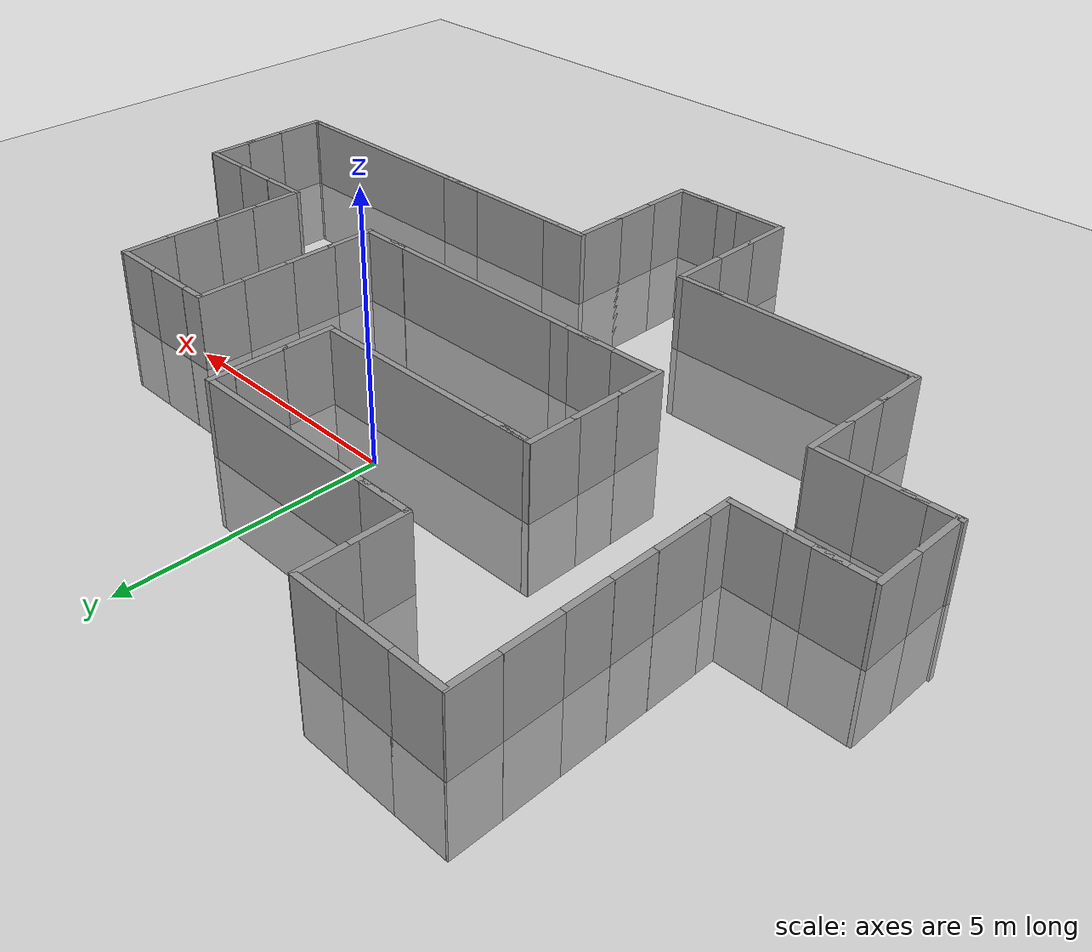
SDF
<sdf version="1.4">
 <world name="default">
  <physics type="ode">
   <gravity>0 0 -9.81</gravity>
   <ode>
    <solver><type>quick</type><iters>20</iters><sor>1</sor></solver>
    <constraints>
     <cfm>0</cfm>
     <erp>0.2</erp>
     <contact_max_correcting_vel>100</contact_max_correcting_vel>
     <contact_surface_layer>0</contact_surface_layer>
    </constraints>
   </ode>
   <real_time_update_rate>1000</real_time_update_rate>
   <max_step_size>0.001</max_step_size>
   <real_time_factor>1</real_time_factor>
  </physics>
  <light name="sun" type="directional">
   <pose>0 0 10 0 -0 0</pose>
   <diffuse>0.8 0.8 0.8 1</diffuse>
   <specular>0.2 0.2 0.2 1</specular>
   <attenuation>
    <range>1000</range>
    <constant>0.9</constant>
    <linear>0.01</linear>
    <quadratic>0.001</quadratic>
   </attenuation>
   <direction>-0.5 0.1 -0.9</direction>
  </light>
  <model name="ground_plane">
   <static>1</static>
   <link name="link">
    <collision name="collision">
     <geometry><plane><normal>0 0 1</normal><size>100 100</size></plane></geometry>
     <surface><friction><ode><mu>100</mu><mu2>50</mu2></ode></friction></surface>
    </collision>
    <visual name="visual">
     <cast_shadows>0</cast_shadows>
     <geometry><plane><normal>0 0 1</normal><size>100 100</size></plane></geometry>
     <material>
      <script><uri>file://media/materials/scripts/gazebo.material</uri><name>Gazebo/Grey</name></script>
     </material>
    </visual>
    <velocity_decay><linear>0</linear><angular>0</angular></velocity_decay>
   </link>
  </model>
  <scene><ambient>0.4 0.4 0.4 1</ambient><background>0.7 0.7 0.7 1</background><shadows>1</shadows></scene>
  <spherical_coordinates>
   <surface_model>EARTH_WGS84</surface_model>
   <latitude_deg>0</latitude_deg>
   <longitude_deg>0</longitude_deg>
   <elevation>0</elevation>
   <heading_deg>0</heading_deg>
  </spherical_coordinates>
  <model name="road_3">
   <static>1</static>
   <link name="Wall_0">
    <collision name="Wall_0_Collision">
     <geometry><box><size>4.76 0.12 3</size></box></geometry>
     <pose>2.58 -0.26 0 0 -0 0</pose>
    </collision>
    <visual name="Wall_0_Visual">
     <geometry><box><size>4.76 0.12 3</size></box></geometry>
     <material>
      <script><uri>file://media/materials/scripts/gazebo.material</uri><name>Gazebo/Grey</name></script>
     </material>
     <pose>2.58 -0.26 0 0 -0 0</pose>
    </visual>
    <velocity_decay><linear>0</linear><angular>0</angular></velocity_decay>
   </link>
   <pose>5 -6.40557 0 0 -0 0</pose>
  </model>
  <model name="wall_vertical_2">
   <static>1</static>
   <link name="Wall_37">
    <collision name="Wall_37_Collision">
     <geometry><box><size>1.04 0.12 3</size></box></geometry>
     <pose>2.58 -0.26 0 0 -0 0</pose>
    </collision>
    <visual name="Wall_37_Visual">
     <geometry><box><size>1.04 0.12 3</size></box></geometry>
     <material>
      <script><uri>file://media/materials/scripts/gazebo.material</uri><name>Gazebo/Grey</name></script>
     </material>
     <pose>2.58 -0.26 0 0 -0 0</pose>
    </visual>
    <velocity_decay><linear>0</linear><angular>0</angular></velocity_decay>
   </link>
   <pose>7 -3.56839 0 0 -0 0</pose>
  </model>
  <model name="wall_vertical_3">
   <static>1</static>
   <link name="Wall_37">
    <collision name="Wall_37_Collision">
     <geometry><box><size>1.04 0.12 3</size></box></geometry>
     <pose>2.58 -0.26 0 0 -0 0</pose>
    </collision>
    <visual name="Wall_37_Visual">
     <geometry><box><size>1.04 0.12 3</size></box></geometry>
     <material>
      <script><uri>file://media/materials/scripts/gazebo.material</uri><name>Gazebo/Grey</name></script>
     </material>
     <pose>2.58 -0.26 0 0 -0 0</pose>
    </visual>
    <velocity_decay><linear>0</linear><angular>0</angular></velocity_decay>
   </link>
   <pose>6 -3.56858 0 0 -0 0</pose>
  </model>
  <model name="wall_vertical_4">
   <static>1</static>
   <link name="Wall_37">
    <collision name="Wall_37_Collision">
     <geometry><box><size>1.04 0.12 3</size></box></geometry>
     <pose>2.58 -0.26 0 0 -0 0</pose>
    </collision>
    <visual name="Wall_37_Visual">
     <geometry><box><size>1.04 0.12 3</size></box></geometry>
     <material>
      <script><uri>file://media/materials/scripts/gazebo.material</uri><name>Gazebo/Grey</name></script>
     </material>
     <pose>2.58 -0.26 0 0 -0 0</pose>
    </visual>
    <velocity_decay><linear>0</linear><angular>0</angular></velocity_decay>
   </link>
   <pose>5 -3.57759 0 0 -0 0</pose>
  </model>
  <model name="wall_horizontal_8">
   <static>1</static>
   <link name="Wall_4">
    <collision name="Wall_4_Collision">
     <geometry><box><size>0.12 1.12 3</size></box></geometry>
     <pose>2.58 -0.26 0 0 -0 0</pose>
    </collision>
    <visual name="Wall_4_Visual">
     <geometry><box><size>0.12 1.12 3</size></box></geometry>
     <material>
      <script><uri>file://media/materials/scripts/gazebo.material</uri><name>Gazebo/Grey</name></script>
     </material>
     <pose>2.58 -0.26 0 0 -0 0</pose>
    </visual>
    <velocity_decay><linear>0</linear><angular>0</angular></velocity_decay>
   </link>
   <pose>4.53991 -3 0 0 -0 0</pose>
  </model>
  <model name="wall_horizontal_10">
   <static>1</static>
   <link name="Wall_4">
    <collision name="Wall_4_Collision">
     <geometry><box><size>0.12 1.12 3</size></box></geometry>
     <pose>2.58 -0.26 0 0 -0 0</pose>
    </collision>
    <visual name="Wall_4_Visual">
     <geometry><box><size>0.12 1.12 3</size></box></geometry>
     <material>
      <script><uri>file://media/materials/scripts/gazebo.material</uri><name>Gazebo/Grey</name></script>
     </material>
     <pose>2.58 -0.26 0 0 -0 0</pose>
    </visual>
    <velocity_decay><linear>0</linear><angular>0</angular></velocity_decay>
   </link>
   <pose>4.54095 -2 0 0 -0 0</pose>
  </model>
  <model name="wall_horizontal_11">
   <static>1</static>
   <link name="Wall_4">
    <collision name="Wall_4_Collision">
     <geometry><box><size>0.12 1.12 3</size></box></geometry>
     <pose>2.58 -0.26 0 0 -0 0</pose>
    </collision>
    <visual name="Wall_4_Visual">
     <geometry><box><size>0.12 1.12 3</size></box></geometry>
     <material>
      <script><uri>file://media/materials/scripts/gazebo.material</uri><name>Gazebo/Grey</name></script>
     </material>
     <pose>2.58 -0.26 0 0 -0 0</pose>
    </visual>
    <velocity_decay><linear>0</linear><angular>0</angular></velocity_decay>
   </link>
   <pose>4.53858 -1 0 0 -0 0</pose>
  </model>
  <model name="wall_horizontal_14">
   <static>1</static>
   <link name="Wall_4">
    <collision name="Wall_4_Collision">
     <geometry><box><size>0.12 1.12 3</size></box></geometry>
     <pose>2.58 -0.26 0 0 -0 0</pose>
    </collision>
    <visual name="Wall_4_Visual">
     <geometry><box><size>0.12 1.12 3</size></box></geometry>
     <material>
      <script><uri>file://media/materials/scripts/gazebo.material</uri><name>Gazebo/Grey</name></script>
     </material>
     <pose>2.58 -0.26 0 0 -0 0</pose>
    </visual>
    <velocity_decay><linear>0</linear><angular>0</angular></velocity_decay>
   </link>
   <pose>2 -3 0 0 -0 0</pose>
  </model>
  <model name="wall_horizontal_15">
   <static>1</static>
   <link name="Wall_4">
    <collision name="Wall_4_Collision">
     <geometry><box><size>0.12 1.12 3</size></box></geometry>
     <pose>2.58 -0.26 0 0 -0 0</pose>
    </collision>
    <visual name="Wall_4_Visual">
     <geometry><box><size>0.12 1.12 3</size></box></geometry>
     <material>
      <script><uri>file://media/materials/scripts/gazebo.material</uri><name>Gazebo/Grey</name></script>
     </material>
     <pose>2.58 -0.26 0 0 -0 0</pose>
    </visual>
    <velocity_decay><linear>0</linear><angular>0</angular></velocity_decay>
   </link>
   <pose>2 -2 0 0 -0 0</pose>
  </model>
  <model name="wall_horizontal_16">
   <static>1</static>
   <link name="Wall_4">
    <collision name="Wall_4_Collision">
     <geometry><box><size>0.12 1.12 3</size></box></geometry>
     <pose>2.58 -0.26 0 0 -0 0</pose>
    </collision>
    <visual name="Wall_4_Visual">
     <geometry><box><size>0.12 1.12 3</size></box></geometry>
     <material>
      <script><uri>file://media/materials/scripts/gazebo.material</uri><name>Gazebo/Grey</name></script>
     </material>
     <pose>2.58 -0.26 0 0 -0 0</pose>
    </visual>
    <velocity_decay><linear>0</linear><angular>0</angular></velocity_decay>
   </link>
   <pose>2 -1 0 0 -0 0</pose>
  </model>
  <model name="wall_horizontal_17">
   <static>1</static>
   <link name="Wall_4">
    <collision name="Wall_4_Collision">
     <geometry><box><size>0.12 1.12 3</size></box></geometry>
     <pose>2.58 -0.26 0 0 -0 0</pose>
    </collision>
    <visual name="Wall_4_Visual">
     <geometry><box><size>0.12 1.12 3</size></box></geometry>
     <material>
      <script><uri>file://media/materials/scripts/gazebo.material</uri><name>Gazebo/Grey</name></script>
     </material>
     <pose>2.58 -0.26 0 0 -0 0</pose>
    </visual>
    <velocity_decay><linear>0</linear><angular>0</angular></velocity_decay>
   </link>
   <pose>2 0 0 0 -0 0</pose>
  </model>
  <model name="wall_horizontal_18">
   <static>1</static>
   <link name="Wall_4">
    <collision name="Wall_4_Collision">
     <geometry><box><size>0.12 1.12 3</size></box></geometry>
     <pose>2.58 -0.26 0 0 -0 0</pose>
    </collision>
    <visual name="Wall_4_Visual">
     <geometry><box><size>0.12 1.12 3</size></box></geometry>
     <material>
      <script><uri>file://media/materials/scripts/gazebo.material</uri><name>Gazebo/Grey</name></script>
     </material>
     <pose>2.58 -0.26 0 0 -0 0</pose>
    </visual>
    <velocity_decay><linear>0</linear><angular>0</angular></velocity_decay>
   </link>
   <pose>4.53794 0 0 0 -0 0</pose>
  </model>
  <model name="wall_vertical_6">
   <static>1</static>
   <link name="Wall_37">
    <collision name="Wall_37_Collision">
     <geometry><box><size>1.04 0.12 3</size></box></geometry>
     <pose>2.58 -0.26 0 0 -0 0</pose>
    </collision>
    <visual name="Wall_37_Visual">
     <geometry><box><size>1.04 0.12 3</size></box></geometry>
     <material>
      <script><uri>file://media/materials/scripts/gazebo.material</uri><name>Gazebo/Grey</name></script>
     </material>
     <pose>2.58 -0.26 0 0 -0 0</pose>
    </visual>
    <velocity_decay><linear>0</linear><angular>0</angular></velocity_decay>
   </link>
   <pose>2.45897 -6.40117 0 0 -0 0</pose>
  </model>
  <model name="road_4">
   <static>1</static>
   <link name="Wall_0">
    <collision name="Wall_0_Collision">
     <geometry><box><size>4.76 0.12 3</size></box></geometry>
     <pose>2.58 -0.26 0 0 -0 0</pose>
    </collision>
    <visual name="Wall_0_Visual">
     <geometry><box><size>4.76 0.12 3</size></box></geometry>
     <material>
      <script><uri>file://media/materials/scripts/gazebo.material</uri><name>Gazebo/Grey</name></script>
     </material>
     <pose>2.58 -0.26 0 0 -0 0</pose>
    </visual>
    <velocity_decay><linear>0</linear><angular>0</angular></velocity_decay>
   </link>
   <pose>2 -6.40598 0 0 -0 0</pose>
  </model>
  <model name="wall_horizontal_19">
   <static>1</static>
   <link name="Wall_4">
    <collision name="Wall_4_Collision">
     <geometry><box><size>0.12 1.12 3</size></box></geometry>
     <pose>2.58 -0.26 0 0 -0 0</pose>
    </collision>
    <visual name="Wall_4_Visual">
     <geometry><box><size>0.12 1.12 3</size></box></geometry>
     <material>
      <script><uri>file://media/materials/scripts/gazebo.material</uri><name>Gazebo/Grey</name></script>
     </material>
     <pose>2.58 -0.26 0 0 -0 0</pose>
    </visual>
    <velocity_decay><linear>0</linear><angular>0</angular></velocity_decay>
   </link>
   <pose>-1 -7 0 0 -0 0</pose>
  </model>
  <model name="wall_vertical_11">
   <static>1</static>
   <link name="Wall_37">
    <collision name="Wall_37_Collision">
     <geometry><box><size>1.04 0.12 3</size></box></geometry>
     <pose>2.58 -0.26 0 0 -0 0</pose>
    </collision>
    <visual name="Wall_37_Visual">
     <geometry><box><size>1.04 0.12 3</size></box></geometry>
     <material>
      <script><uri>file://media/materials/scripts/gazebo.material</uri><name>Gazebo/Grey</name></script>
     </material>
     <pose>2.58 -0.26 0 0 -0 0</pose>
    </visual>
    <velocity_decay><linear>0</linear><angular>0</angular></velocity_decay>
   </link>
   <pose>-0.544386 -6.40292 0 0 -0 0</pose>
  </model>
  <model name="road_5">
   <static>1</static>
   <link name="Wall_0">
    <collision name="Wall_0_Collision">
     <geometry><box><size>4.76 0.12 3</size></box></geometry>
     <pose>2.58 -0.26 0 0 -0 0</pose>
    </collision>
    <visual name="Wall_0_Visual">
     <geometry><box><size>4.76 0.12 3</size></box></geometry>
     <material>
      <script><uri>file://media/materials/scripts/gazebo.material</uri><name>Gazebo/Grey</name></script>
     </material>
     <pose>2.58 -0.26 0 0 -0 0</pose>
    </visual>
    <velocity_decay><linear>0</linear><angular>0</angular></velocity_decay>
   </link>
   <pose>-1 -3.49648 0 0 -0 0</pose>
  </model>
  <model name="wall_vertical_13">
   <static>1</static>
   <link name="Wall_37">
    <collision name="Wall_37_Collision">
     <geometry><box><size>1.04 0.12 3</size></box></geometry>
     <pose>2.58 -0.26 0 0 -0 0</pose>
    </collision>
    <visual name="Wall_37_Visual">
     <geometry><box><size>1.04 0.12 3</size></box></geometry>
     <material>
      <script><uri>file://media/materials/scripts/gazebo.material</uri><name>Gazebo/Grey</name></script>
     </material>
     <pose>2.58 -0.26 0 0 -0 0</pose>
    </visual>
    <velocity_decay><linear>0</linear><angular>0</angular></velocity_decay>
   </link>
   <pose>1.46262 -3.4849 0 0 -0 0</pose>
  </model>
  <model name="road_7">
   <static>1</static>
   <link name="Wall_0">
    <collision name="Wall_0_Collision">
     <geometry><box><size>4.76 0.12 3</size></box></geometry>
     <pose>2.58 -0.26 0 0 -0 0</pose>
    </collision>
    <visual name="Wall_0_Visual">
     <geometry><box><size>4.76 0.12 3</size></box></geometry>
     <material>
      <script><uri>file://media/materials/scripts/gazebo.material</uri><name>Gazebo/Grey</name></script>
     </material>
     <pose>2.58 -0.26 0 0 -0 0</pose>
    </visual>
    <velocity_decay><linear>0</linear><angular>0</angular></velocity_decay>
   </link>
   <pose>-6 -6.42547 0 0 -0 0</pose>
  </model>
  <model name="wall_vertical_14">
   <static>1</static>
   <link name="Wall_37">
    <collision name="Wall_37_Collision">
     <geometry><box><size>1.04 0.12 3</size></box></geometry>
     <pose>2.58 -0.26 0 0 -0 0</pose>
    </collision>
    <visual name="Wall_37_Visual">
     <geometry><box><size>1.04 0.12 3</size></box></geometry>
     <material>
      <script><uri>file://media/materials/scripts/gazebo.material</uri><name>Gazebo/Grey</name></script>
     </material>
     <pose>2.58 -0.26 0 0 -0 0</pose>
    </visual>
    <velocity_decay><linear>0</linear><angular>0</angular></velocity_decay>
   </link>
   <pose>-4 -6.42833 0 0 -0 0</pose>
  </model>
  <model name="wall_horizontal_21">
   <static>1</static>
   <link name="Wall_4">
    <collision name="Wall_4_Collision">
     <geometry><box><size>0.12 1.12 3</size></box></geometry>
     <pose>2.58 -0.26 0 0 -0 0</pose>
    </collision>
    <visual name="Wall_4_Visual">
     <geometry><box><size>0.12 1.12 3</size></box></geometry>
     <material>
      <script><uri>file://media/materials/scripts/gazebo.material</uri><name>Gazebo/Grey</name></script>
     </material>
     <pose>2.58 -0.26 0 0 -0 0</pose>
    </visual>
    <velocity_decay><linear>0</linear><angular>0</angular></velocity_decay>
   </link>
   <pose>-3.52944 -7 0 0 -0 0</pose>
  </model>
  <model name="wall_vertical_15">
   <static>1</static>
   <link name="Wall_37">
    <collision name="Wall_37_Collision">
     <geometry><box><size>1.04 0.12 3</size></box></geometry>
     <pose>2.58 -0.26 0 0 -0 0</pose>
    </collision>
    <visual name="Wall_37_Visual">
     <geometry><box><size>1.04 0.12 3</size></box></geometry>
     <material>
      <script><uri>file://media/materials/scripts/gazebo.material</uri><name>Gazebo/Grey</name></script>
     </material>
     <pose>2.58 -0.26 0 0 -0 0</pose>
    </visual>
    <velocity_decay><linear>0</linear><angular>0</angular></velocity_decay>
   </link>
   <pose>-3.56569 -3.4925 0 0 -0 0</pose>
  </model>
  <model name="wall_vertical_17">
   <static>1</static>
   <link name="Wall_37">
    <collision name="Wall_37_Collision">
     <geometry><box><size>1.04 0.12 3</size></box></geometry>
     <pose>2.58 -0.26 0 0 -0 0</pose>
    </collision>
    <visual name="Wall_37_Visual">
     <geometry><box><size>1.04 0.12 3</size></box></geometry>
     <material>
      <script><uri>file://media/materials/scripts/gazebo.material</uri><name>Gazebo/Grey</name></script>
     </material>
     <pose>2.58 -0.26 0 0 -0 0</pose>
    </visual>
    <velocity_decay><linear>0</linear><angular>0</angular></velocity_decay>
   </link>
   <pose>-4 -3.49091 0 0 -0 0</pose>
  </model>
  <model name="wall_vertical_19">
   <static>1</static>
   <link name="Wall_37">
    <collision name="Wall_37_Collision">
     <geometry><box><size>1.04 0.12 3</size></box></geometry>
     <pose>2.58 -0.26 0 0 -0 0</pose>
    </collision>
    <visual name="Wall_37_Visual">
     <geometry><box><size>1.04 0.12 3</size></box></geometry>
     <material>
      <script><uri>file://media/materials/scripts/gazebo.material</uri><name>Gazebo/Grey</name></script>
     </material>
     <pose>2.58 -0.26 0 0 -0 0</pose>
    </visual>
    <velocity_decay><linear>0</linear><angular>0</angular></velocity_decay>
   </link>
   <pose>-5 -3.48647 0 0 -0 0</pose>
  </model>
  <model name="wall_horizontal_24">
   <static>1</static>
   <link name="Wall_4">
    <collision name="Wall_4_Collision">
     <geometry><box><size>0.12 1.12 3</size></box></geometry>
     <pose>2.58 -0.26 0 0 -0 0</pose>
    </collision>
    <visual name="Wall_4_Visual">
     <geometry><box><size>0.12 1.12 3</size></box></geometry>
     <material>
      <script><uri>file://media/materials/scripts/gazebo.material</uri><name>Gazebo/Grey</name></script>
     </material>
     <pose>2.58 -0.26 0 0 -0 0</pose>
    </visual>
    <velocity_decay><linear>0</linear><angular>0</angular></velocity_decay>
   </link>
   <pose>-5.47354 -3 0 0 -0 0</pose>
  </model>
  <model name="wall_horizontal_26">
   <static>1</static>
   <link name="Wall_4">
    <collision name="Wall_4_Collision">
     <geometry><box><size>0.12 1.12 3</size></box></geometry>
     <pose>2.58 -0.26 0 0 -0 0</pose>
    </collision>
    <visual name="Wall_4_Visual">
     <geometry><box><size>0.12 1.12 3</size></box></geometry>
     <material>
      <script><uri>file://media/materials/scripts/gazebo.material</uri><name>Gazebo/Grey</name></script>
     </material>
     <pose>2.58 -0.26 0 0 -0 0</pose>
    </visual>
    <velocity_decay><linear>0</linear><angular>0</angular></velocity_decay>
   </link>
   <pose>-5.47149 -2 0 0 -0 0</pose>
  </model>
  <model name="wall_horizontal_27">
   <static>1</static>
   <link name="Wall_4">
    <collision name="Wall_4_Collision">
     <geometry><box><size>0.12 1.12 3</size></box></geometry>
     <pose>2.58 -0.26 0 0 -0 0</pose>
    </collision>
    <visual name="Wall_4_Visual">
     <geometry><box><size>0.12 1.12 3</size></box></geometry>
     <material>
      <script><uri>file://media/materials/scripts/gazebo.material</uri><name>Gazebo/Grey</name></script>
     </material>
     <pose>2.58 -0.26 0 0 -0 0</pose>
    </visual>
    <velocity_decay><linear>0</linear><angular>0</angular></velocity_decay>
   </link>
   <pose>-5.47191 -1 0 0 -0 0</pose>
  </model>
  <model name="wall_horizontal_28">
   <static>1</static>
   <link name="Wall_4">
    <collision name="Wall_4_Collision">
     <geometry><box><size>0.12 1.12 3</size></box></geometry>
     <pose>2.58 -0.26 0 0 -0 0</pose>
    </collision>
    <visual name="Wall_4_Visual">
     <geometry><box><size>0.12 1.12 3</size></box></geometry>
     <material>
      <script><uri>file://media/materials/scripts/gazebo.material</uri><name>Gazebo/Grey</name></script>
     </material>
     <pose>2.58 -0.26 0 0 -0 0</pose>
    </visual>
    <velocity_decay><linear>0</linear><angular>0</angular></velocity_decay>
   </link>
   <pose>-5.50793 2.51414 0 0 -0 0</pose>
  </model>
  <model name="wall_horizontal_34">
   <static>1</static>
   <link name="Wall_4">
    <collision name="Wall_4_Collision">
     <geometry><box><size>0.12 1.12 3</size></box></geometry>
     <pose>2.58 -0.26 0 0 -0 0</pose>
    </collision>
    <visual name="Wall_4_Visual">
     <geometry><box><size>0.12 1.12 3</size></box></geometry>
     <material>
      <script><uri>file://media/materials/scripts/gazebo.material</uri><name>Gazebo/Grey</name></script>
     </material>
     <pose>2.58 -0.26 0 0 -0 0</pose>
    </visual>
    <velocity_decay><linear>0</linear><angular>0</angular></velocity_decay>
   </link>
   <pose>-8.50702 -0.438329 0 0 -0 0</pose>
  </model>
  <model name="wall_horizontal_36">
   <static>1</static>
   <link name="Wall_4">
    <collision name="Wall_4_Collision">
     <geometry><box><size>0.12 1.12 3</size></box></geometry>
     <pose>2.58 -0.26 0 0 -0 0</pose>
    </collision>
    <visual name="Wall_4_Visual">
     <geometry><box><size>0.12 1.12 3</size></box></geometry>
     <material>
      <script><uri>file://media/materials/scripts/gazebo.material</uri><name>Gazebo/Grey</name></script>
     </material>
     <pose>2.58 -0.26 0 0 -0 0</pose>
    </visual>
    <velocity_decay><linear>0</linear><angular>0</angular></velocity_decay>
   </link>
   <pose>-8.50457 0.454309 0 0 -0 0</pose>
  </model>
  <model name="wall_horizontal_37">
   <static>1</static>
   <link name="Wall_4">
    <collision name="Wall_4_Collision">
     <geometry><box><size>0.12 1.12 3</size></box></geometry>
     <pose>2.58 -0.26 0 0 -0 0</pose>
    </collision>
    <visual name="Wall_4_Visual">
     <geometry><box><size>0.12 1.12 3</size></box></geometry>
     <material>
      <script><uri>file://media/materials/scripts/gazebo.material</uri><name>Gazebo/Grey</name></script>
     </material>
     <pose>2.58 -0.26 0 0 -0 0</pose>
    </visual>
    <velocity_decay><linear>0</linear><angular>0</angular></velocity_decay>
   </link>
   <pose>-8.50217 1.56712 0 0 -0 0</pose>
  </model>
  <model name="wall_horizontal_38">
   <static>1</static>
   <link name="Wall_4">
    <collision name="Wall_4_Collision">
     <geometry><box><size>0.12 1.12 3</size></box></geometry>
     <pose>2.58 -0.26 0 0 -0 0</pose>
    </collision>
    <visual name="Wall_4_Visual">
     <geometry><box><size>0.12 1.12 3</size></box></geometry>
     <material>
      <script><uri>file://media/materials/scripts/gazebo.material</uri><name>Gazebo/Grey</name></script>
     </material>
     <pose>2.58 -0.26 0 0 -0 0</pose>
    </visual>
    <velocity_decay><linear>0</linear><angular>0</angular></velocity_decay>
   </link>
   <pose>-8.50221 2.50783 0 0 -0 0</pose>
  </model>
  <model name="wall_horizontal_39">
   <static>1</static>
   <link name="Wall_4">
    <collision name="Wall_4_Collision">
     <geometry><box><size>0.12 1.12 3</size></box></geometry>
     <pose>2.58 -0.26 0 0 -0 0</pose>
    </collision>
    <visual name="Wall_4_Visual">
     <geometry><box><size>0.12 1.12 3</size></box></geometry>
     <material>
      <script><uri>file://media/materials/scripts/gazebo.material</uri><name>Gazebo/Grey</name></script>
     </material>
     <pose>2.58 -0.26 0 0 -0 0</pose>
    </visual>
    <velocity_decay><linear>0</linear><angular>0</angular></velocity_decay>
   </link>
   <pose>-8.50009 3.49648 0 0 -0 0</pose>
  </model>
  <model name="wall_horizontal_42">
   <static>1</static>
   <link name="Wall_4">
    <collision name="Wall_4_Collision">
     <geometry><box><size>0.12 1.12 3</size></box></geometry>
     <pose>2.58 -0.26 0 0 -0 0</pose>
    </collision>
    <visual name="Wall_4_Visual">
     <geometry><box><size>0.12 1.12 3</size></box></geometry>
     <material>
      <script><uri>file://media/materials/scripts/gazebo.material</uri><name>Gazebo/Grey</name></script>
     </material>
     <pose>2.58 -0.26 0 0 -0 0</pose>
    </visual>
    <velocity_decay><linear>0</linear><angular>0</angular></velocity_decay>
   </link>
   <pose>-8.50291 -1 0 0 -0 0</pose>
  </model>
  <model name="wall_horizontal_45">
   <static>1</static>
   <link name="Wall_4">
    <collision name="Wall_4_Collision">
     <geometry><box><size>0.12 1.12 3</size></box></geometry>
     <pose>2.58 -0.26 0 0 -0 0</pose>
    </collision>
    <visual name="Wall_4_Visual">
     <geometry><box><size>0.12 1.12 3</size></box></geometry>
     <material>
      <script><uri>file://media/materials/scripts/gazebo.material</uri><name>Gazebo/Grey</name></script>
     </material>
     <pose>2.58 -0.26 0 0 -0 0</pose>
    </visual>
    <velocity_decay><linear>0</linear><angular>0</angular></velocity_decay>
   </link>
   <pose>-8.50505 -5.92568 0 0 -0 0</pose>
  </model>
  <model name="wall_vertical_27">
   <static>1</static>
   <link name="Wall_37">
    <collision name="Wall_37_Collision">
     <geometry><box><size>1.04 0.12 3</size></box></geometry>
     <pose>2.58 -0.26 0 0 -0 0</pose>
    </collision>
    <visual name="Wall_37_Visual">
     <geometry><box><size>1.04 0.12 3</size></box></geometry>
     <material>
      <script><uri>file://media/materials/scripts/gazebo.material</uri><name>Gazebo/Grey</name></script>
     </material>
     <pose>2.58 -0.26 0 0 -0 0</pose>
    </visual>
    <velocity_decay><linear>0</linear><angular>0</angular></velocity_decay>
   </link>
   <pose>-8 -6.42784 0 0 -0 0</pose>
  </model>
  <model name="wall_horizontal_46">
   <static>1</static>
   <link name="Wall_4">
    <collision name="Wall_4_Collision">
     <geometry><box><size>0.12 1.12 3</size></box></geometry>
     <pose>2.58 -0.26 0 0 -0 0</pose>
    </collision>
    <visual name="Wall_4_Visual">
     <geometry><box><size>0.12 1.12 3</size></box></geometry>
     <material>
      <script><uri>file://media/materials/scripts/gazebo.material</uri><name>Gazebo/Grey</name></script>
     </material>
     <pose>2.58 -0.26 0 0 -0 0</pose>
    </visual>
    <velocity_decay><linear>0</linear><angular>0</angular></velocity_decay>
   </link>
   <pose>-8.50502 -5 0 0 -0 0</pose>
  </model>
  <model name="wall_horizontal_47">
   <static>1</static>
   <link name="Wall_4">
    <collision name="Wall_4_Collision">
     <geometry><box><size>0.12 1.12 3</size></box></geometry>
     <pose>2.58 -0.26 0 0 -0 0</pose>
    </collision>
    <visual name="Wall_4_Visual">
     <geometry><box><size>0.12 1.12 3</size></box></geometry>
     <material>
      <script><uri>file://media/materials/scripts/gazebo.material</uri><name>Gazebo/Grey</name></script>
     </material>
     <pose>2.58 -0.26 0 0 -0 0</pose>
    </visual>
    <velocity_decay><linear>0</linear><angular>0</angular></velocity_decay>
   </link>
   <pose>-8.50671 -4 0 0 -0 0</pose>
  </model>
  <model name="wall_vertical_28">
   <static>1</static>
   <link name="Wall_37">
    <collision name="Wall_37_Collision">
     <geometry><box><size>1.04 0.12 3</size></box></geometry>
     <pose>2.58 -0.26 0 0 -0 0</pose>
    </collision>
    <visual name="Wall_37_Visual">
     <geometry><box><size>1.04 0.12 3</size></box></geometry>
     <material>
      <script><uri>file://media/materials/scripts/gazebo.material</uri><name>Gazebo/Grey</name></script>
     </material>
     <pose>2.58 -0.26 0 0 -0 0</pose>
    </visual>
    <velocity_decay><linear>0</linear><angular>0</angular></velocity_decay>
   </link>
   <pose>-9 -3.49783 0 0 -0 0</pose>
  </model>
  <model name="wall_vertical_29">
   <static>1</static>
   <link name="Wall_37">
    <collision name="Wall_37_Collision">
     <geometry><box><size>1.04 0.12 3</size></box></geometry>
     <pose>2.58 -0.26 0 0 -0 0</pose>
    </collision>
    <visual name="Wall_37_Visual">
     <geometry><box><size>1.04 0.12 3</size></box></geometry>
     <material>
      <script><uri>file://media/materials/scripts/gazebo.material</uri><name>Gazebo/Grey</name></script>
     </material>
     <pose>2.58 -0.26 0 0 -0 0</pose>
    </visual>
    <velocity_decay><linear>0</linear><angular>0</angular></velocity_decay>
   </link>
   <pose>-9 -1.49659 0 0 -0 0</pose>
  </model>
  <model name="wall_vertical_31">
   <static>1</static>
   <link name="Wall_37">
    <collision name="Wall_37_Collision">
     <geometry><box><size>1.04 0.12 3</size></box></geometry>
     <pose>2.58 -0.26 0 0 -0 0</pose>
    </collision>
    <visual name="Wall_37_Visual">
     <geometry><box><size>1.04 0.12 3</size></box></geometry>
     <material>
      <script><uri>file://media/materials/scripts/gazebo.material</uri><name>Gazebo/Grey</name></script>
     </material>
     <pose>2.58 -0.26 0 0 -0 0</pose>
    </visual>
    <velocity_decay><linear>0</linear><angular>0</angular></velocity_decay>
   </link>
   <pose>2.46125 0.501966 0 0 -0 0</pose>
  </model>
  <model name="wall_vertical_33">
   <static>1</static>
   <link name="Wall_37">
    <collision name="Wall_37_Collision">
     <geometry><box><size>1.04 0.12 3</size></box></geometry>
     <pose>2.58 -0.26 0 0 -0 0</pose>
    </collision>
    <visual name="Wall_37_Visual">
     <geometry><box><size>1.04 0.12 3</size></box></geometry>
     <material>
      <script><uri>file://media/materials/scripts/gazebo.material</uri><name>Gazebo/Grey</name></script>
     </material>
     <pose>2.58 -0.26 0 0 -0 0</pose>
    </visual>
    <velocity_decay><linear>0</linear><angular>0</angular></velocity_decay>
   </link>
   <pose>3 0.505474 0 0 -0 0</pose>
  </model>
  <model name="wall_vertical_34">
   <static>1</static>
   <link name="Wall_37">
    <collision name="Wall_37_Collision">
     <geometry><box><size>1.04 0.12 3</size></box></geometry>
     <pose>2.58 -0.26 0 0 -0 0</pose>
    </collision>
    <visual name="Wall_37_Visual">
     <geometry><box><size>1.04 0.12 3</size></box></geometry>
     <material>
      <script><uri>file://media/materials/scripts/gazebo.material</uri><name>Gazebo/Grey</name></script>
     </material>
     <pose>2.58 -0.26 0 0 -0 0</pose>
    </visual>
    <velocity_decay><linear>0</linear><angular>0</angular></velocity_decay>
   </link>
   <pose>4 0.504931 0 0 -0 0</pose>
  </model>
  <model name="wall_vertical_35">
   <static>1</static>
   <link name="Wall_37">
    <collision name="Wall_37_Collision">
     <geometry><box><size>1.04 0.12 3</size></box></geometry>
     <pose>2.58 -0.26 0 0 -0 0</pose>
    </collision>
    <visual name="Wall_37_Visual">
     <geometry><box><size>1.04 0.12 3</size></box></geometry>
     <material>
      <script><uri>file://media/materials/scripts/gazebo.material</uri><name>Gazebo/Grey</name></script>
     </material>
     <pose>2.58 -0.26 0 0 -0 0</pose>
    </visual>
    <velocity_decay><linear>0</linear><angular>0</angular></velocity_decay>
   </link>
   <pose>-5 2 0 0 -0 0</pose>
  </model>
  <model name="wall_vertical_36">
   <static>1</static>
   <link name="Wall_37">
    <collision name="Wall_37_Collision">
     <geometry><box><size>1.04 0.12 3</size></box></geometry>
     <pose>2.58 -0.26 0 0 -0 0</pose>
    </collision>
    <visual name="Wall_37_Visual">
     <geometry><box><size>1.04 0.12 3</size></box></geometry>
     <material>
      <script><uri>file://media/materials/scripts/gazebo.material</uri><name>Gazebo/Grey</name></script>
     </material>
     <pose>2.58 -0.26 0 0 -0 0</pose>
    </visual>
    <velocity_decay><linear>0</linear><angular>0</angular></velocity_decay>
   </link>
   <pose>-5 -0.492631 0 0 -0 0</pose>
  </model>
  <model name="wall_horizontal_48">
   <static>1</static>
   <link name="Wall_4">
    <collision name="Wall_4_Collision">
     <geometry><box><size>0.12 1.12 3</size></box></geometry>
     <pose>2.58 -0.26 0 0 -0 0</pose>
    </collision>
    <visual name="Wall_4_Visual">
     <geometry><box><size>0.12 1.12 3</size></box></geometry>
     <material>
      <script><uri>file://media/materials/scripts/gazebo.material</uri><name>Gazebo/Grey</name></script>
     </material>
     <pose>2.58 -0.26 0 0 -0 0</pose>
    </visual>
    <velocity_decay><linear>0</linear><angular>0</angular></velocity_decay>
   </link>
   <pose>-0.569766 0 0 0 -0 0</pose>
  </model>
  <model name="wall_horizontal_50">
   <static>1</static>
   <link name="Wall_4">
    <collision name="Wall_4_Collision">
     <geometry><box><size>0.12 1.12 3</size></box></geometry>
     <pose>2.58 -0.26 0 0 -0 0</pose>
    </collision>
    <visual name="Wall_4_Visual">
     <geometry><box><size>0.12 1.12 3</size></box></geometry>
     <material>
      <script><uri>file://media/materials/scripts/gazebo.material</uri><name>Gazebo/Grey</name></script>
     </material>
     <pose>2.58 -0.26 0 0 -0 0</pose>
    </visual>
    <velocity_decay><linear>0</linear><angular>0</angular></velocity_decay>
   </link>
   <pose>-0.569292 1 0 0 -0 0</pose>
  </model>
  <model name="wall_horizontal_51">
   <static>1</static>
   <link name="Wall_4">
    <collision name="Wall_4_Collision">
     <geometry><box><size>0.12 1.12 3</size></box></geometry>
     <pose>2.58 -0.26 0 0 -0 0</pose>
    </collision>
    <visual name="Wall_4_Visual">
     <geometry><box><size>0.12 1.12 3</size></box></geometry>
     <material>
      <script><uri>file://media/materials/scripts/gazebo.material</uri><name>Gazebo/Grey</name></script>
     </material>
     <pose>2.58 -0.26 0 0 -0 0</pose>
    </visual>
    <velocity_decay><linear>0</linear><angular>0</angular></velocity_decay>
   </link>
   <pose>-0.563059 1.50047 0 0 -0 0</pose>
  </model>
  <model name="wall_vertical_39">
   <static>1</static>
   <link name="Wall_37">
    <collision name="Wall_37_Collision">
     <geometry><box><size>1.04 0.12 3</size></box></geometry>
     <pose>2.58 -0.26 0 0 -0 0</pose>
    </collision>
    <visual name="Wall_37_Visual">
     <geometry><box><size>1.04 0.12 3</size></box></geometry>
     <material>
      <script><uri>file://media/materials/scripts/gazebo.material</uri><name>Gazebo/Grey</name></script>
     </material>
     <pose>2.58 -0.26 0 0 -0 0</pose>
    </visual>
    <velocity_decay><linear>0</linear><angular>0</angular></velocity_decay>
   </link>
   <pose>-10 -3.49661 0 0 -0 0</pose>
  </model>
  <model name="wall_vertical_40">
   <static>1</static>
   <link name="Wall_37">
    <collision name="Wall_37_Collision">
     <geometry><box><size>1.04 0.12 3</size></box></geometry>
     <pose>2.58 -0.26 0 0 -0 0</pose>
    </collision>
    <visual name="Wall_37_Visual">
     <geometry><box><size>1.04 0.12 3</size></box></geometry>
     <material>
      <script><uri>file://media/materials/scripts/gazebo.material</uri><name>Gazebo/Grey</name></script>
     </material>
     <pose>2.58 -0.26 0 0 -0 0</pose>
    </visual>
    <velocity_decay><linear>0</linear><angular>0</angular></velocity_decay>
   </link>
   <pose>-10 -1.4953 0 0 -0 0</pose>
  </model>
  <model name="wall_vertical_41">
   <static>1</static>
   <link name="Wall_37">
    <collision name="Wall_37_Collision">
     <geometry><box><size>1.04 0.12 3</size></box></geometry>
     <pose>2.58 -0.26 0 0 -0 0</pose>
    </collision>
    <visual name="Wall_37_Visual">
     <geometry><box><size>1.04 0.12 3</size></box></geometry>
     <material>
      <script><uri>file://media/materials/scripts/gazebo.material</uri><name>Gazebo/Grey</name></script>
     </material>
     <pose>2.58 -0.26 0 0 -0 0</pose>
    </visual>
    <velocity_decay><linear>0</linear><angular>0</angular></velocity_decay>
   </link>
   <pose>-10.5775 -3.49779 0 0 -0 0</pose>
  </model>
  <model name="wall_vertical_42">
   <static>1</static>
   <link name="Wall_37">
    <collision name="Wall_37_Collision">
     <geometry><box><size>1.04 0.12 3</size></box></geometry>
     <pose>2.58 -0.26 0 0 -0 0</pose>
    </collision>
    <visual name="Wall_37_Visual">
     <geometry><box><size>1.04 0.12 3</size></box></geometry>
     <material>
      <script><uri>file://media/materials/scripts/gazebo.material</uri><name>Gazebo/Grey</name></script>
     </material>
     <pose>2.58 -0.26 0 0 -0 0</pose>
    </visual>
    <velocity_decay><linear>0</linear><angular>0</angular></velocity_decay>
   </link>
   <pose>-10.4662 -1.49309 0 0 -0 0</pose>
  </model>
  <model name="wall_horizontal_52">
   <static>1</static>
   <link name="Wall_4">
    <collision name="Wall_4_Collision">
     <geometry><box><size>0.12 1.12 3</size></box></geometry>
     <pose>2.58 -0.26 0 0 -0 0</pose>
    </collision>
    <visual name="Wall_4_Visual">
     <geometry><box><size>0.12 1.12 3</size></box></geometry>
     <material>
      <script><uri>file://media/materials/scripts/gazebo.material</uri><name>Gazebo/Grey</name></script>
     </material>
     <pose>2.58 -0.26 0 0 -0 0</pose>
    </visual>
    <velocity_decay><linear>0</linear><angular>0</angular></velocity_decay>
   </link>
   <pose>-11 -2 0 0 -0 0</pose>
  </model>
  <model name="wall_horizontal_53">
   <static>1</static>
   <link name="Wall_4">
    <collision name="Wall_4_Collision">
     <geometry><box><size>0.12 1.12 3</size></box></geometry>
     <pose>2.58 -0.26 0 0 -0 0</pose>
    </collision>
    <visual name="Wall_4_Visual">
     <geometry><box><size>0.12 1.12 3</size></box></geometry>
     <material>
      <script><uri>file://media/materials/scripts/gazebo.material</uri><name>Gazebo/Grey</name></script>
     </material>
     <pose>2.58 -0.26 0 0 -0 0</pose>
    </visual>
    <velocity_decay><linear>0</linear><angular>0</angular></velocity_decay>
   </link>
   <pose>-11 -3 0 0 -0 0</pose>
  </model>
  <model name="wall_vertical_43">
   <static>1</static>
   <link name="Wall_37">
    <collision name="Wall_37_Collision">
     <geometry><box><size>1.04 0.12 3</size></box></geometry>
     <pose>2.58 -0.26 0 0 -0 0</pose>
    </collision>
    <visual name="Wall_37_Visual">
     <geometry><box><size>1.04 0.12 3</size></box></geometry>
     <material>
      <script><uri>file://media/materials/scripts/gazebo.material</uri><name>Gazebo/Grey</name></script>
     </material>
     <pose>2.58 -0.26 0 0 -0 0</pose>
    </visual>
    <velocity_decay><linear>0</linear><angular>0</angular></velocity_decay>
   </link>
   <pose>-8 4 0 0 -0 0</pose>
  </model>
  <model name="wall_vertical_44">
   <static>1</static>
   <link name="Wall_37">
    <collision name="Wall_37_Collision">
     <geometry><box><size>1.04 0.12 3</size></box></geometry>
     <pose>2.58 -0.26 0 0 -0 0</pose>
    </collision>
    <visual name="Wall_37_Visual">
     <geometry><box><size>1.04 0.12 3</size></box></geometry>
     <material>
      <script><uri>file://media/materials/scripts/gazebo.material</uri><name>Gazebo/Grey</name></script>
     </material>
     <pose>2.58 -0.26 0 0 -0 0</pose>
    </visual>
    <velocity_decay><linear>0</linear><angular>0</angular></velocity_decay>
   </link>
   <pose>-7 4 0 0 -0 0</pose>
  </model>
  <model name="wall_vertical_45">
   <static>1</static>
   <link name="Wall_37">
    <collision name="Wall_37_Collision">
     <geometry><box><size>1.04 0.12 3</size></box></geometry>
     <pose>2.58 -0.26 0 0 -0 0</pose>
    </collision>
    <visual name="Wall_37_Visual">
     <geometry><box><size>1.04 0.12 3</size></box></geometry>
     <material>
      <script><uri>file://media/materials/scripts/gazebo.material</uri><name>Gazebo/Grey</name></script>
     </material>
     <pose>2.58 -0.26 0 0 -0 0</pose>
    </visual>
    <velocity_decay><linear>0</linear><angular>0</angular></velocity_decay>
   </link>
   <pose>-6 4 0 0 -0 0</pose>
  </model>
  <model name="wall_horizontal_55">
   <static>1</static>
   <link name="Wall_4">
    <collision name="Wall_4_Collision">
     <geometry><box><size>0.12 1.12 3</size></box></geometry>
     <pose>2.58 -0.26 0 0 -0 0</pose>
    </collision>
    <visual name="Wall_4_Visual">
     <geometry><box><size>0.12 1.12 3</size></box></geometry>
     <material>
      <script><uri>file://media/materials/scripts/gazebo.material</uri><name>Gazebo/Grey</name></script>
     </material>
     <pose>2.58 -0.26 0 0 -0 0</pose>
    </visual>
    <velocity_decay><linear>0</linear><angular>0</angular></velocity_decay>
   </link>
   <pose>-5.5096 3.49109 0 0 -0 0</pose>
  </model>
  <model name="wall_horizontal_56">
   <static>1</static>
   <link name="Wall_4">
    <collision name="Wall_4_Collision">
     <geometry><box><size>0.12 1.12 3</size></box></geometry>
     <pose>2.58 -0.26 0 0 -0 0</pose>
    </collision>
    <visual name="Wall_4_Visual">
     <geometry><box><size>0.12 1.12 3</size></box></geometry>
     <material>
      <script><uri>file://media/materials/scripts/gazebo.material</uri><name>Gazebo/Grey</name></script>
     </material>
     <pose>2.58 -0.26 0 0 -0 0</pose>
    </visual>
    <velocity_decay><linear>0</linear><angular>0</angular></velocity_decay>
   </link>
   <pose>-1 -8 0 0 -0 0</pose>
  </model>
  <model name="wall_horizontal_57">
   <static>1</static>
   <link name="Wall_4">
    <collision name="Wall_4_Collision">
     <geometry><box><size>0.12 1.12 3</size></box></geometry>
     <pose>2.58 -0.26 0 0 -0 0</pose>
    </collision>
    <visual name="Wall_4_Visual">
     <geometry><box><size>0.12 1.12 3</size></box></geometry>
     <material>
      <script><uri>file://media/materials/scripts/gazebo.material</uri><name>Gazebo/Grey</name></script>
     </material>
     <pose>2.58 -0.26 0 0 -0 0</pose>
    </visual>
    <velocity_decay><linear>0</linear><angular>0</angular></velocity_decay>
   </link>
   <pose>-3.52536 -8 0 0 -0 0</pose>
  </model>
  <model name="wall_horizontal_58">
   <static>1</static>
   <link name="Wall_4">
    <collision name="Wall_4_Collision">
     <geometry><box><size>0.12 1.12 3</size></box></geometry>
     <pose>2.58 -0.26 0 0 -0 0</pose>
    </collision>
    <visual name="Wall_4_Visual">
     <geometry><box><size>0.12 1.12 3</size></box></geometry>
     <material>
      <script><uri>file://media/materials/scripts/gazebo.material</uri><name>Gazebo/Grey</name></script>
     </material>
     <pose>2.58 -0.26 0 0 -0 0</pose>
    </visual>
    <velocity_decay><linear>0</linear><angular>0</angular></velocity_decay>
   </link>
   <pose>-1 -9 0 0 -0 0</pose>
  </model>
  <model name="wall_horizontal_59">
   <static>1</static>
   <link name="Wall_4">
    <collision name="Wall_4_Collision">
     <geometry><box><size>0.12 1.12 3</size></box></geometry>
     <pose>2.58 -0.26 0 0 -0 0</pose>
    </collision>
    <visual name="Wall_4_Visual">
     <geometry><box><size>0.12 1.12 3</size></box></geometry>
     <material>
      <script><uri>file://media/materials/scripts/gazebo.material</uri><name>Gazebo/Grey</name></script>
     </material>
     <pose>2.58 -0.26 0 0 -0 0</pose>
    </visual>
    <velocity_decay><linear>0</linear><angular>0</angular></velocity_decay>
   </link>
   <pose>-3.5225 -9 0 0 -0 0</pose>
  </model>
  <model name="wall_vertical_46">
   <static>1</static>
   <link name="Wall_37">
    <collision name="Wall_37_Collision">
     <geometry><box><size>1.04 0.12 3</size></box></geometry>
     <pose>2.58 -0.26 0 0 -0 0</pose>
    </collision>
    <visual name="Wall_37_Visual">
     <geometry><box><size>1.04 0.12 3</size></box></geometry>
     <material>
      <script><uri>file://media/materials/scripts/gazebo.material</uri><name>Gazebo/Grey</name></script>
     </material>
     <pose>2.58 -0.26 0 0 -0 0</pose>
    </visual>
    <velocity_decay><linear>0</linear><angular>0</angular></velocity_decay>
   </link>
   <pose>-1.47166 -9.51045 0 0 -0 0</pose>
  </model>
  <model name="wall_vertical_48">
   <static>1</static>
   <link name="Wall_37">
    <collision name="Wall_37_Collision">
     <geometry><box><size>1.04 0.12 3</size></box></geometry>
     <pose>2.58 -0.26 0 0 -0 0</pose>
    </collision>
    <visual name="Wall_37_Visual">
     <geometry><box><size>1.04 0.12 3</size></box></geometry>
     <material>
      <script><uri>file://media/materials/scripts/gazebo.material</uri><name>Gazebo/Grey</name></script>
     </material>
     <pose>2.58 -0.26 0 0 -0 0</pose>
    </visual>
    <velocity_decay><linear>0</linear><angular>0</angular></velocity_decay>
   </link>
   <pose>-2 -9.51236 0 0 -0 0</pose>
  </model>
  <model name="wall_vertical_49">
   <static>1</static>
   <link name="Wall_37">
    <collision name="Wall_37_Collision">
     <geometry><box><size>1.04 0.12 3</size></box></geometry>
     <pose>2.58 -0.26 0 0 -0 0</pose>
    </collision>
    <visual name="Wall_37_Visual">
     <geometry><box><size>1.04 0.12 3</size></box></geometry>
     <material>
      <script><uri>file://media/materials/scripts/gazebo.material</uri><name>Gazebo/Grey</name></script>
     </material>
     <pose>2.58 -0.26 0 0 -0 0</pose>
    </visual>
    <velocity_decay><linear>0</linear><angular>0</angular></velocity_decay>
   </link>
   <pose>-3 -9.5121 0 0 -0 0</pose>
  </model>
  <model name="road_13">
   <static>1</static>
   <link name="Wall_0">
    <collision name="Wall_0_Collision">
     <geometry><box><size>4.76 0.12 3</size></box></geometry>
     <pose>2.58 -0.26 0 0 -0 0</pose>
    </collision>
    <visual name="Wall_0_Visual">
     <geometry><box><size>4.76 0.12 3</size></box></geometry>
     <material>
      <script><uri>file://media/materials/scripts/gazebo.material</uri><name>Gazebo/Grey</name></script>
     </material>
     <pose>2.58 -0.26 0 0 -0 0</pose>
    </visual>
    <velocity_decay><linear>0</linear><angular>0</angular></velocity_decay>
   </link>
   <pose>-3 -0.491018 0 0 -0 0</pose>
  </model>
  <model name="road_14">
   <static>1</static>
   <link name="Wall_0">
    <collision name="Wall_0_Collision">
     <geometry><box><size>4.76 0.12 3</size></box></geometry>
     <pose>2.58 -0.26 0 0 -0 0</pose>
    </collision>
    <visual name="Wall_0_Visual">
     <geometry><box><size>4.76 0.12 3</size></box></geometry>
     <material>
      <script><uri>file://media/materials/scripts/gazebo.material</uri><name>Gazebo/Grey</name></script>
     </material>
     <pose>2.58 -0.26 0 0 -0 0</pose>
    </visual>
    <velocity_decay><linear>0</linear><angular>0</angular></velocity_decay>
   </link>
   <pose>-3 2 0 0 -0 0</pose>
  </model>
  <model name="wall_horizontal">
   <static>1</static>
   <link name="Wall_4">
    <collision name="Wall_4_Collision">
     <geometry><box><size>0.12 1.12 3</size></box></geometry>
     <pose>2.58 -0.26 0 0 -0 0</pose>
    </collision>
    <visual name="Wall_4_Visual">
     <geometry><box><size>0.12 1.12 3</size></box></geometry>
     <material>
      <script><uri>file://media/materials/scripts/gazebo.material</uri><name>Gazebo/Grey</name></script>
     </material>
     <pose>2.58 -0.26 0 0 -0 0</pose>
    </visual>
    <velocity_decay><linear>0</linear><angular>0</angular></velocity_decay>
   </link>
   <pose>7.5134 -4.08081 -0 0 -0 0</pose>
  </model>
  <model name="wall_horizontal_0">
   <static>1</static>
   <link name="Wall_4">
    <collision name="Wall_4_Collision">
     <geometry><box><size>0.12 1.12 3</size></box></geometry>
     <pose>2.58 -0.26 0 0 -0 0</pose>
    </collision>
    <visual name="Wall_4_Visual">
     <geometry><box><size>0.12 1.12 3</size></box></geometry>
     <material>
      <script><uri>file://media/materials/scripts/gazebo.material</uri><name>Gazebo/Grey</name></script>
     </material>
     <pose>2.58 -0.26 0 0 -0 0</pose>
    </visual>
    <velocity_decay><linear>0</linear><angular>0</angular></velocity_decay>
   </link>
   <pose>7.51022 -5 0 0 -0 0</pose>
  </model>
  <model name="wall_horizontal_1">
   <static>1</static>
   <link name="Wall_4">
    <collision name="Wall_4_Collision">
     <geometry><box><size>0.12 1.12 3</size></box></geometry>
     <pose>2.58 -0.26 0 0 -0 0</pose>
    </collision>
    <visual name="Wall_4_Visual">
     <geometry><box><size>0.12 1.12 3</size></box></geometry>
     <material>
      <script><uri>file://media/materials/scripts/gazebo.material</uri><name>Gazebo/Grey</name></script>
     </material>
     <pose>2.58 -0.26 0 0 -0 0</pose>
    </visual>
    <velocity_decay><linear>0</linear><angular>0</angular></velocity_decay>
   </link>
   <pose>7.51005 -5.9082 0 0 -0 0</pose>
  </model>
  <model name="wall_vertical">
   <static>1</static>
   <link name="Wall_37">
    <collision name="Wall_37_Collision">
     <geometry><box><size>1.04 0.12 3</size></box></geometry>
     <pose>2.58 -0.26 0 0 -0 0</pose>
    </collision>
    <visual name="Wall_37_Visual">
     <geometry><box><size>1.04 0.12 3</size></box></geometry>
     <material>
      <script><uri>file://media/materials/scripts/gazebo.material</uri><name>Gazebo/Grey</name></script>
     </material>
     <pose>2.58 -0.26 0 0 -0 0</pose>
    </visual>
    <velocity_decay><linear>0</linear><angular>0</angular></velocity_decay>
   </link>
   <pose>7 -6.40588 0 0 -0 0</pose>
  </model>
 </world>
</sdf>
